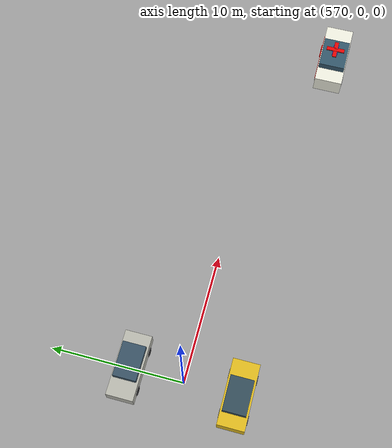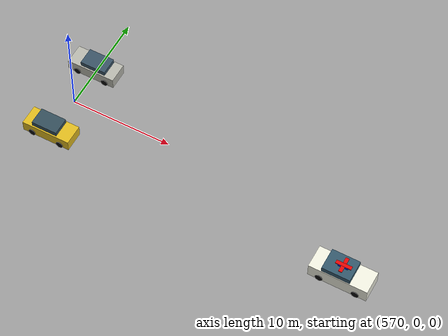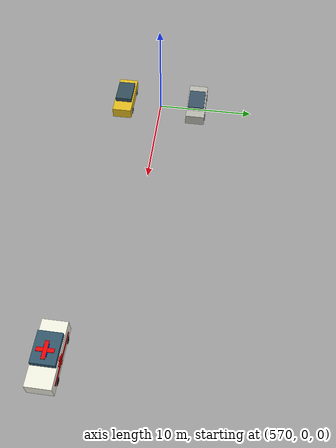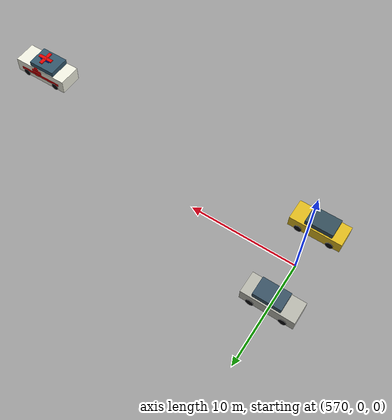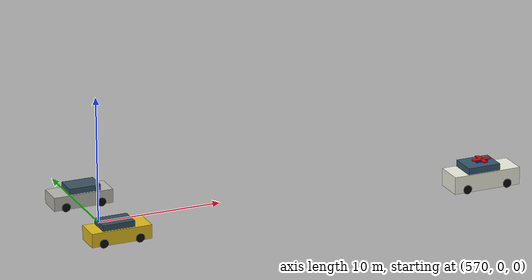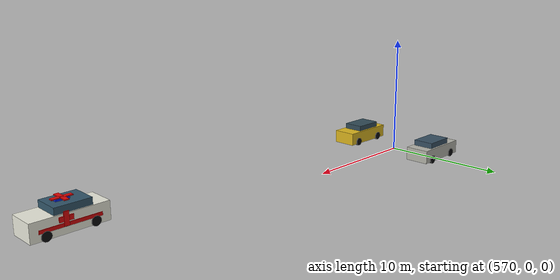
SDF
<sdf version="1.9">
 <world name="smart_city">
  <model name="downtown_car_21">
   <static>true</static>
   <pose>570 -4 0 0 0 0</pose>
   <link name="car">
    <visual name="body">
     <pose>0 0 0.72 0 0 0</pose>
     <geometry><box><size>4.8 2.0 1.1</size></box></geometry>
     <material><ambient>0.88 0.73 0.12 1</ambient><diffuse>0.88 0.73 0.12 1</diffuse></material>
    </visual>
    <visual name="cabin">
     <pose>-0.18 0 1.38 0 0 0</pose>
     <geometry><box><size>2.55 1.72 0.72</size></box></geometry>
     <material><ambient>0.20 0.30 0.35 1</ambient><diffuse>0.20 0.30 0.35 1</diffuse></material>
    </visual>
    <visual name="wheel_fl">
     <pose>1.45 0.96 0.36 1.5708 0 0</pose>
     <geometry><cylinder><radius>0.35</radius><length>0.18</length></cylinder></geometry>
     <material><ambient>0.04 0.04 0.045 1</ambient><diffuse>0.04 0.04 0.045 1</diffuse></material>
    </visual>
    <visual name="wheel_fr">
     <pose>1.45 -0.96 0.36 1.5708 0 0</pose>
     <geometry><cylinder><radius>0.35</radius><length>0.18</length></cylinder></geometry>
     <material><ambient>0.04 0.04 0.045 1</ambient><diffuse>0.04 0.04 0.045 1</diffuse></material>
    </visual>
    <visual name="wheel_rl">
     <pose>-1.45 0.96 0.36 1.5708 0 0</pose>
     <geometry><cylinder><radius>0.35</radius><length>0.18</length></cylinder></geometry>
     <material><ambient>0.04 0.04 0.045 1</ambient><diffuse>0.04 0.04 0.045 1</diffuse></material>
    </visual>
    <visual name="wheel_rr">
     <pose>-1.45 -0.96 0.36 1.5708 0 0</pose>
     <geometry><cylinder><radius>0.35</radius><length>0.18</length></cylinder></geometry>
     <material><ambient>0.04 0.04 0.045 1</ambient><diffuse>0.04 0.04 0.045 1</diffuse></material>
    </visual>
   </link>
  </model>
  <model name="downtown_car_29">
   <static>true</static>
   <pose>570 4 0 0 0 3.1416</pose>
   <link name="car">
    <visual name="body">
     <pose>0 0 0.72 0 0 0</pose>
     <geometry><box><size>4.8 2.0 1.1</size></box></geometry>
     <material><ambient>0.72 0.72 0.68 1</ambient><diffuse>0.72 0.72 0.68 1</diffuse></material>
    </visual>
    <visual name="cabin">
     <pose>-0.18 0 1.38 0 0 0</pose>
     <geometry><box><size>2.55 1.72 0.72</size></box></geometry>
     <material><ambient>0.22 0.32 0.39 1</ambient><diffuse>0.22 0.32 0.39 1</diffuse></material>
    </visual>
    <visual name="wheel_fl">
     <pose>1.45 0.96 0.36 1.5708 0 0</pose>
     <geometry><cylinder><radius>0.35</radius><length>0.18</length></cylinder></geometry>
     <material><ambient>0.04 0.04 0.045 1</ambient><diffuse>0.04 0.04 0.045 1</diffuse></material>
    </visual>
    <visual name="wheel_fr">
     <pose>1.45 -0.96 0.36 1.5708 0 0</pose>
     <geometry><cylinder><radius>0.35</radius><length>0.18</length></cylinder></geometry>
     <material><ambient>0.04 0.04 0.045 1</ambient><diffuse>0.04 0.04 0.045 1</diffuse></material>
    </visual>
    <visual name="wheel_rl">
     <pose>-1.45 0.96 0.36 1.5708 0 0</pose>
     <geometry><cylinder><radius>0.35</radius><length>0.18</length></cylinder></geometry>
     <material><ambient>0.04 0.04 0.045 1</ambient><diffuse>0.04 0.04 0.045 1</diffuse></material>
    </visual>
    <visual name="wheel_rr">
     <pose>-1.45 -0.96 0.36 1.5708 0 0</pose>
     <geometry><cylinder><radius>0.35</radius><length>0.18</length></cylinder></geometry>
     <material><ambient>0.04 0.04 0.045 1</ambient><diffuse>0.04 0.04 0.045 1</diffuse></material>
    </visual>
   </link>
  </model>
  <model name="district_ambulance_03">
   <static>true</static>
   <pose>600 -5 0 0 0 0</pose>
   <link name="ambulance">
    <visual name="body">
     <pose>0 0 0.82 0 0 0</pose>
     <geometry><box><size>5.6 2.25 1.4</size></box></geometry>
     <material><ambient>0.94 0.94 0.88 1</ambient><diffuse>0.94 0.94 0.88 1</diffuse></material>
    </visual>
    <visual name="medical_cabin">
     <pose>-0.25 0 1.62 0 0 0</pose>
     <geometry><box><size>2.7 2.12 0.86</size></box></geometry>
     <material><ambient>0.20 0.34 0.42 1</ambient><diffuse>0.20 0.34 0.42 1</diffuse></material>
    </visual>
    <visual name="red_side_stripe">
     <pose>0 1.14 0.76 0 0 0</pose>
     <geometry><box><size>4.4 0.05 0.26</size></box></geometry>
     <material><ambient>0.86 0.02 0.02 1</ambient><diffuse>0.86 0.02 0.02 1</diffuse></material>
    </visual>
    <visual name="red_side_cross_v">
     <pose>0.35 1.18 1.18 0 0 0</pose>
     <geometry><box><size>0.36 0.08 1.0</size></box></geometry>
     <material><ambient>0.9 0.02 0.02 1</ambient><diffuse>0.9 0.02 0.02 1</diffuse></material>
    </visual>
    <visual name="red_side_cross_h">
     <pose>0.35 1.18 1.18 0 0 0</pose>
     <geometry><box><size>1.0 0.08 0.36</size></box></geometry>
     <material><ambient>0.9 0.02 0.02 1</ambient><diffuse>0.9 0.02 0.02 1</diffuse></material>
    </visual>
    <visual name="lightbar">
     <pose>0 0 2.1 0 0 0</pose>
     <geometry><box><size>1.0 0.42 0.18</size></box></geometry>
     <material>
      <ambient>0.02 0.15 0.95 1</ambient>
      <diffuse>0.02 0.15 0.95 1</diffuse>
      <emissive>0.02 0.08 0.65 1</emissive>
     </material>
    </visual>
    <visual name="roof_cross_long">
     <pose>0 0 2.22 0 0 0</pose>
     <geometry><box><size>1.5 0.34 0.08</size></box></geometry>
     <material><ambient>0.9 0.02 0.02 1</ambient><diffuse>0.9 0.02 0.02 1</diffuse></material>
    </visual>
    <visual name="roof_cross_wide">
     <pose>0 0 2.22 0 0 0</pose>
     <geometry><box><size>0.34 1.5 0.08</size></box></geometry>
     <material><ambient>0.9 0.02 0.02 1</ambient><diffuse>0.9 0.02 0.02 1</diffuse></material>
    </visual>
    <visual name="wheel_fl">
     <pose>1.72 1.08 0.36 1.5708 0 0</pose>
     <geometry><cylinder><radius>0.36</radius><length>0.18</length></cylinder></geometry>
     <material><ambient>0.04 0.04 0.045 1</ambient><diffuse>0.04 0.04 0.045 1</diffuse></material>
    </visual>
    <visual name="wheel_fr">
     <pose>1.72 -1.08 0.36 1.5708 0 0</pose>
     <geometry><cylinder><radius>0.36</radius><length>0.18</length></cylinder></geometry>
     <material><ambient>0.04 0.04 0.045 1</ambient><diffuse>0.04 0.04 0.045 1</diffuse></material>
    </visual>
    <visual name="wheel_rl">
     <pose>-1.72 1.08 0.36 1.5708 0 0</pose>
     <geometry><cylinder><radius>0.36</radius><length>0.18</length></cylinder></geometry>
     <material><ambient>0.04 0.04 0.045 1</ambient><diffuse>0.04 0.04 0.045 1</diffuse></material>
    </visual>
    <visual name="wheel_rr">
     <pose>-1.72 -1.08 0.36 1.5708 0 0</pose>
     <geometry><cylinder><radius>0.36</radius><length>0.18</length></cylinder></geometry>
     <material><ambient>0.04 0.04 0.045 1</ambient><diffuse>0.04 0.04 0.045 1</diffuse></material>
    </visual>
   </link>
  </model>
 </world>
</sdf>
